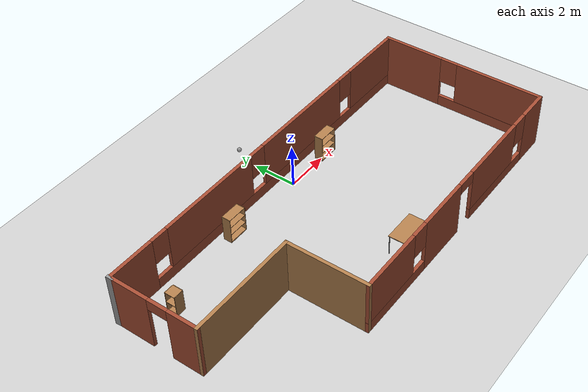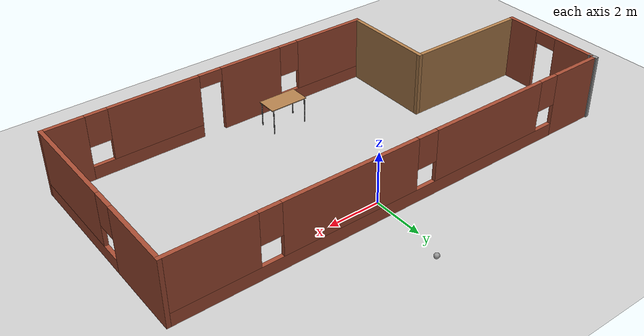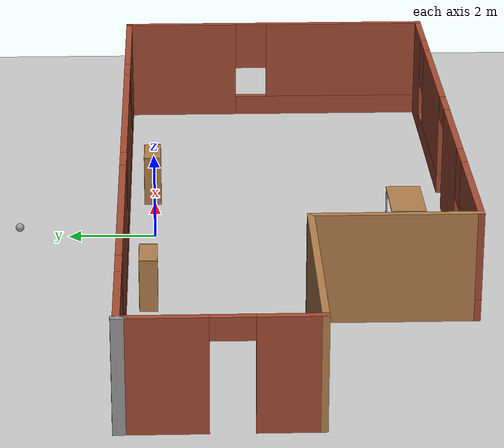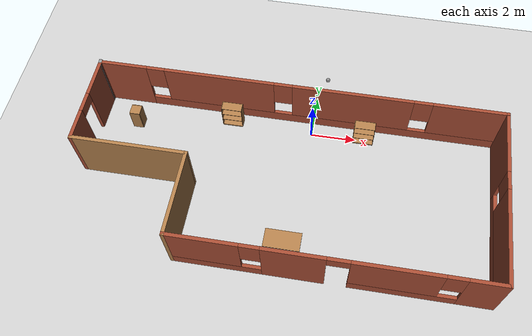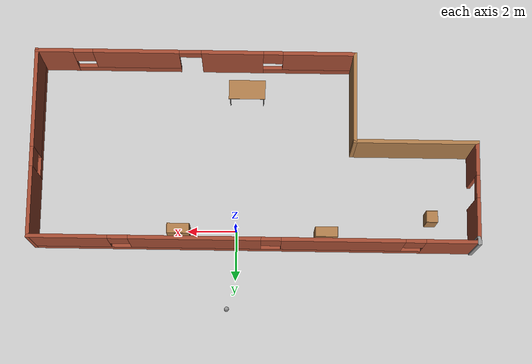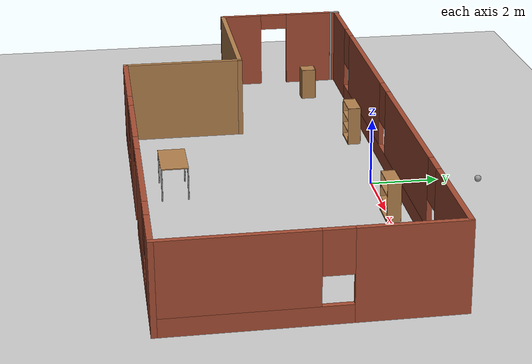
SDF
<sdf version="1.6">
 <world name="default">
  <plugin name="hello" filename="libhello.so"/>
  <light name="sun" type="directional">
   <pose>0 0 10 0 -0 0</pose>
   <diffuse>0.8 0.8 0.8 1</diffuse>
   <specular>0.2 0.2 0.2 1</specular>
   <attenuation>
    <range>1000</range>
    <constant>0.9</constant>
    <linear>0.01</linear>
    <quadratic>0.001</quadratic>
   </attenuation>
   <direction>-0.5 0.1 -0.9</direction>
  </light>
  <model name="ground_plane">
   <static>1</static>
   <link name="link">
    <collision name="collision">
     <geometry><plane><normal>0 0 1</normal><size>100 100</size></plane></geometry>
     <surface>
      <contact><collide_bitmask>65535</collide_bitmask></contact>
      <friction><ode><mu>100</mu><mu2>50</mu2></ode></friction>
     </surface>
    </collision>
    <visual name="visual">
     <cast_shadows>0</cast_shadows>
     <geometry><plane><normal>0 0 1</normal><size>100 100</size></plane></geometry>
     <material>
      <script><uri>file://media/materials/scripts/gazebo.material</uri><name>Gazebo/Grey</name></script>
     </material>
    </visual>
   </link>
  </model>
  <gravity>0 0 -9.8</gravity>
  <magnetic_field>6e-06 2.3e-05 -4.2e-05</magnetic_field>
  <atmosphere type="adiabatic"/>
  <physics name="default_physics" default="0" type="ode">
   <max_step_size>0.001</max_step_size>
   <real_time_factor>1</real_time_factor>
   <real_time_update_rate>1000</real_time_update_rate>
  </physics>
  <scene><ambient>0.4 0.4 0.4 1</ambient><background>0.7 0.7 0.7 1</background><shadows>1</shadows></scene>
  <spherical_coordinates>
   <surface_model>EARTH_WGS84</surface_model>
   <latitude_deg>0</latitude_deg>
   <longitude_deg>0</longitude_deg>
   <elevation>0</elevation>
   <heading_deg>0</heading_deg>
  </spherical_coordinates>
  <model name="building">
   <pose>-0.710805 -3.10027 0 0 -0 0</pose>
   <link name="Wall_0">
    <pose>0.057851 3.7776 0 0 -0 0</pose>
    <visual name="Wall_0_Visual_0">
     <pose>-7.84406 0 1.25 0 -0 0</pose>
     <geometry><box><size>2.06188 0.15 2.5</size></box></geometry>
     <material>
      <script><uri>file://media/materials/scripts/gazebo.material</uri><name>Gazebo/Bricks</name></script>
      <ambient>0.333333 0.666667 1 1</ambient>
     </material>
     <meta><layer>0</layer></meta>
    </visual>
    <collision name="Wall_0_Collision_0">
     <geometry><box><size>2.06188 0.15 2.5</size></box></geometry>
     <pose>-7.84406 0 1.25 0 -0 0</pose>
    </collision>
    <visual name="Wall_0_Visual_1">
     <pose>1.03094 0 0.25 0 -0 0</pose>
     <geometry><box><size>15.6881 0.15 0.5</size></box></geometry>
     <material>
      <script><uri>file://media/materials/scripts/gazebo.material</uri><name>Gazebo/Bricks</name></script>
      <ambient>0.333333 0.666667 1 1</ambient>
     </material>
     <meta><layer>0</layer></meta>
    </visual>
    <collision name="Wall_0_Collision_1">
     <geometry><box><size>15.6881 0.15 0.5</size></box></geometry>
     <pose>1.03094 0 0.25 0 -0 0</pose>
    </collision>
    <visual name="Wall_0_Visual_2">
     <pose>-3.58123 0 1.5 0 -0 0</pose>
     <geometry><box><size>4.86378 0.15 2</size></box></geometry>
     <material>
      <script><uri>file://media/materials/scripts/gazebo.material</uri><name>Gazebo/Bricks</name></script>
      <ambient>0.333333 0.666667 1 1</ambient>
     </material>
     <meta><layer>0</layer></meta>
    </visual>
    <collision name="Wall_0_Collision_2">
     <geometry><box><size>4.86378 0.15 2</size></box></geometry>
     <pose>-3.58123 0 1.5 0 -0 0</pose>
    </collision>
    <visual name="Wall_0_Visual_3">
     <pose>2.2646 0 1.5 0 -0 0</pose>
     <geometry><box><size>5.22788 0.15 2</size></box></geometry>
     <material>
      <script><uri>file://media/materials/scripts/gazebo.material</uri><name>Gazebo/Bricks</name></script>
      <ambient>0.333333 0.666667 1 1</ambient>
     </material>
     <meta><layer>0</layer></meta>
    </visual>
    <collision name="Wall_0_Collision_3">
     <geometry><box><size>5.22788 0.15 2</size></box></geometry>
     <pose>2.2646 0 1.5 0 -0 0</pose>
    </collision>
    <visual name="Wall_0_Visual_4">
     <pose>7.27677 0 1.5 0 -0 0</pose>
     <geometry><box><size>3.19646 0.15 2</size></box></geometry>
     <material>
      <script><uri>file://media/materials/scripts/gazebo.material</uri><name>Gazebo/Bricks</name></script>
      <ambient>0.333333 0.666667 1 1</ambient>
     </material>
     <meta><layer>0</layer></meta>
    </visual>
    <collision name="Wall_0_Collision_4">
     <geometry><box><size>3.19646 0.15 2</size></box></geometry>
     <pose>7.27677 0 1.5 0 -0 0</pose>
    </collision>
    <visual name="Wall_0_Visual_5">
     <pose>-6.41312 0 1.9 0 -0 0</pose>
     <geometry><box><size>0.8 0.15 1.2</size></box></geometry>
     <material>
      <script><uri>file://media/materials/scripts/gazebo.material</uri><name>Gazebo/Bricks</name></script>
      <ambient>0.333333 0.666667 1 1</ambient>
     </material>
     <meta><layer>0</layer></meta>
    </visual>
    <collision name="Wall_0_Collision_5">
     <geometry><box><size>0.8 0.15 1.2</size></box></geometry>
     <pose>-6.41312 0 1.9 0 -0 0</pose>
    </collision>
    <visual name="Wall_0_Visual_6">
     <pose>-0.749341 0 1.9 0 -0 0</pose>
     <geometry><box><size>0.8 0.15 1.2</size></box></geometry>
     <material>
      <script><uri>file://media/materials/scripts/gazebo.material</uri><name>Gazebo/Bricks</name></script>
      <ambient>0.333333 0.666667 1 1</ambient>
     </material>
     <meta><layer>0</layer></meta>
    </visual>
    <collision name="Wall_0_Collision_6">
     <geometry><box><size>0.8 0.15 1.2</size></box></geometry>
     <pose>-0.749341 0 1.9 0 -0 0</pose>
    </collision>
    <visual name="Wall_0_Visual_7">
     <pose>5.27854 0 1.9 0 -0 0</pose>
     <geometry><box><size>0.8 0.15 1.2</size></box></geometry>
     <material>
      <script><uri>file://media/materials/scripts/gazebo.material</uri><name>Gazebo/Bricks</name></script>
      <ambient>0.333333 0.666667 1 1</ambient>
     </material>
     <meta><layer>0</layer></meta>
    </visual>
    <collision name="Wall_0_Collision_7">
     <geometry><box><size>0.8 0.15 1.2</size></box></geometry>
     <pose>5.27854 0 1.9 0 -0 0</pose>
    </collision>
   </link>
   <link name="Wall_1">
    <pose>8.85785 -0.022395 0 0 0 -1.5708</pose>
    <visual name="Wall_1_Visual_0">
     <pose>-2.43951 0 1.25 0 -0 0</pose>
     <geometry><box><size>2.87099 0.15 2.5</size></box></geometry>
     <material>
      <script><uri>file://media/materials/scripts/gazebo.material</uri><name>Gazebo/Bricks</name></script>
      <ambient>1 1 1 1</ambient>
     </material>
     <meta><layer>0</layer></meta>
    </visual>
    <collision name="Wall_1_Collision_0">
     <geometry><box><size>2.87099 0.15 2.5</size></box></geometry>
     <pose>-2.43951 0 1.25 0 -0 0</pose>
    </collision>
    <visual name="Wall_1_Visual_1">
     <pose>1.43549 0 0.25 0 -0 0</pose>
     <geometry><box><size>4.87901 0.15 0.5</size></box></geometry>
     <material>
      <script><uri>file://media/materials/scripts/gazebo.material</uri><name>Gazebo/Bricks</name></script>
      <ambient>1 1 1 1</ambient>
     </material>
     <meta><layer>0</layer></meta>
    </visual>
    <collision name="Wall_1_Collision_1">
     <geometry><box><size>4.87901 0.15 0.5</size></box></geometry>
     <pose>1.43549 0 0.25 0 -0 0</pose>
    </collision>
    <visual name="Wall_1_Visual_2">
     <pose>1.8355 0 1.5 0 -0 0</pose>
     <geometry><box><size>4.07901 0.15 2</size></box></geometry>
     <material>
      <script><uri>file://media/materials/scripts/gazebo.material</uri><name>Gazebo/Bricks</name></script>
      <ambient>1 1 1 1</ambient>
     </material>
     <meta><layer>0</layer></meta>
    </visual>
    <collision name="Wall_1_Collision_2">
     <geometry><box><size>4.07901 0.15 2</size></box></geometry>
     <pose>1.8355 0 1.5 0 -0 0</pose>
    </collision>
    <visual name="Wall_1_Visual_3">
     <pose>-0.604009 0 1.9 0 -0 0</pose>
     <geometry><box><size>0.8 0.15 1.2</size></box></geometry>
     <material>
      <script><uri>file://media/materials/scripts/gazebo.material</uri><name>Gazebo/Bricks</name></script>
      <ambient>1 1 1 1</ambient>
     </material>
     <meta><layer>0</layer></meta>
    </visual>
    <collision name="Wall_1_Collision_3">
     <geometry><box><size>0.8 0.15 1.2</size></box></geometry>
     <pose>-0.604009 0 1.9 0 -0 0</pose>
    </collision>
   </link>
   <link name="Wall_10">
    <pose>-8.84215 1.7026 0 0 -0 1.5708</pose>
    <visual name="Wall_10_Visual_0">
     <pose>-1.30003 0 1.25 0 -0 0</pose>
     <geometry><box><size>1.39994 0.15 2.5</size></box></geometry>
     <material>
      <script><uri>file://media/materials/scripts/gazebo.material</uri><name>Gazebo/Bricks</name></script>
      <ambient>1 1 1 1</ambient>
     </material>
     <meta><layer>0</layer></meta>
    </visual>
    <collision name="Wall_10_Collision_0">
     <geometry><box><size>1.39994 0.15 2.5</size></box></geometry>
     <pose>-1.30003 0 1.25 0 -0 0</pose>
    </collision>
    <visual name="Wall_10_Visual_1">
     <pose>1.14997 0 1.25 0 -0 0</pose>
     <geometry><box><size>1.70006 0.15 2.5</size></box></geometry>
     <material>
      <script><uri>file://media/materials/scripts/gazebo.material</uri><name>Gazebo/Bricks</name></script>
      <ambient>1 1 1 1</ambient>
     </material>
     <meta><layer>0</layer></meta>
    </visual>
    <collision name="Wall_10_Collision_1">
     <geometry><box><size>1.70006 0.15 2.5</size></box></geometry>
     <pose>1.14997 0 1.25 0 -0 0</pose>
    </collision>
    <visual name="Wall_10_Visual_2">
     <pose>-0.150057 0 2.25 0 -0 0</pose>
     <geometry><box><size>0.9 0.15 0.5</size></box></geometry>
     <material>
      <script><uri>file://media/materials/scripts/gazebo.material</uri><name>Gazebo/Bricks</name></script>
      <ambient>1 1 1 1</ambient>
     </material>
     <meta><layer>0</layer></meta>
    </visual>
    <collision name="Wall_10_Collision_2">
     <geometry><box><size>0.9 0.15 0.5</size></box></geometry>
     <pose>-0.150057 0 2.25 0 -0 0</pose>
    </collision>
   </link>
   <link name="Wall_13">
    <collision name="Wall_13_Collision">
     <geometry><box><size>0.340794 0.15 2.5</size></box></geometry>
     <pose>0 0 1.25 0 -0 0</pose>
    </collision>
    <visual name="Wall_13_Visual">
     <pose>0 0 1.25 0 -0 0</pose>
     <geometry><box><size>0.340794 0.15 2.5</size></box></geometry>
     <material>
      <script><uri>file://media/materials/scripts/gazebo.material</uri><name>Gazebo/Grey</name></script>
      <ambient>1 1 1 1</ambient>
     </material>
     <meta><layer>0</layer></meta>
    </visual>
    <pose>-8.84783 3.72283 0 0 -0 1.63041</pose>
   </link>
   <link name="Wall_2">
    <pose>2.43285 -3.8224 0 0 -0 3.14159</pose>
    <visual name="Wall_2_Visual_0">
     <pose>-5.73111 0 1.25 0 -0 0</pose>
     <geometry><box><size>1.53778 0.15 2.5</size></box></geometry>
     <material>
      <script><uri>file://media/materials/scripts/gazebo.material</uri><name>Gazebo/Bricks</name></script>
      <ambient>1 1 1 1</ambient>
     </material>
     <meta><layer>0</layer></meta>
    </visual>
    <collision name="Wall_2_Collision_0">
     <geometry><box><size>1.53778 0.15 2.5</size></box></geometry>
     <pose>-5.73111 0 1.25 0 -0 0</pose>
    </collision>
    <visual name="Wall_2_Visual_1">
     <pose>1.47043 0 1.25 0 -0 0</pose>
     <geometry><box><size>2.50781 0.15 2.5</size></box></geometry>
     <material>
      <script><uri>file://media/materials/scripts/gazebo.material</uri><name>Gazebo/Bricks</name></script>
      <ambient>1 1 1 1</ambient>
     </material>
     <meta><layer>0</layer></meta>
    </visual>
    <collision name="Wall_2_Collision_1">
     <geometry><box><size>2.50781 0.15 2.5</size></box></geometry>
     <pose>1.47043 0 1.25 0 -0 0</pose>
    </collision>
    <visual name="Wall_2_Visual_2">
     <pose>-2.82285 0 0.25 0 -0 0</pose>
     <geometry><box><size>4.27875 0.15 0.5</size></box></geometry>
     <material>
      <script><uri>file://media/materials/scripts/gazebo.material</uri><name>Gazebo/Bricks</name></script>
      <ambient>1 1 1 1</ambient>
     </material>
     <meta><layer>0</layer></meta>
    </visual>
    <collision name="Wall_2_Collision_2">
     <geometry><box><size>4.27875 0.15 0.5</size></box></geometry>
     <pose>-2.82285 0 0.25 0 -0 0</pose>
    </collision>
    <visual name="Wall_2_Visual_3">
     <pose>4.61217 0 0.25 0 -0 0</pose>
     <geometry><box><size>3.77566 0.15 0.5</size></box></geometry>
     <material>
      <script><uri>file://media/materials/scripts/gazebo.material</uri><name>Gazebo/Bricks</name></script>
      <ambient>1 1 1 1</ambient>
     </material>
     <meta><layer>0</layer></meta>
    </visual>
    <collision name="Wall_2_Collision_3">
     <geometry><box><size>3.77566 0.15 0.5</size></box></geometry>
     <pose>4.61217 0 0.25 0 -0 0</pose>
    </collision>
    <visual name="Wall_2_Visual_4">
     <pose>-2.42285 0 1.5 0 -0 0</pose>
     <geometry><box><size>3.47875 0.15 2</size></box></geometry>
     <material>
      <script><uri>file://media/materials/scripts/gazebo.material</uri><name>Gazebo/Bricks</name></script>
      <ambient>1 1 1 1</ambient>
     </material>
     <meta><layer>0</layer></meta>
    </visual>
    <collision name="Wall_2_Collision_4">
     <geometry><box><size>3.47875 0.15 2</size></box></geometry>
     <pose>-2.42285 0 1.5 0 -0 0</pose>
    </collision>
    <visual name="Wall_2_Visual_5">
     <pose>-2.42285 0 1.5 0 -0 0</pose>
     <geometry><box><size>3.47875 0.15 2</size></box></geometry>
     <material>
      <script><uri>file://media/materials/scripts/gazebo.material</uri><name>Gazebo/Bricks</name></script>
      <ambient>1 1 1 1</ambient>
     </material>
     <meta><layer>0</layer></meta>
    </visual>
    <collision name="Wall_2_Collision_5">
     <geometry><box><size>3.47875 0.15 2</size></box></geometry>
     <pose>-2.42285 0 1.5 0 -0 0</pose>
    </collision>
    <visual name="Wall_2_Visual_6">
     <pose>5.01217 0 1.5 0 -0 0</pose>
     <geometry><box><size>2.97566 0.15 2</size></box></geometry>
     <material>
      <script><uri>file://media/materials/scripts/gazebo.material</uri><name>Gazebo/Bricks</name></script>
      <ambient>1 1 1 1</ambient>
     </material>
     <meta><layer>0</layer></meta>
    </visual>
    <collision name="Wall_2_Collision_6">
     <geometry><box><size>2.97566 0.15 2</size></box></geometry>
     <pose>5.01217 0 1.5 0 -0 0</pose>
    </collision>
    <visual name="Wall_2_Visual_7">
     <pose>-4.56222 0 1.9 0 -0 0</pose>
     <geometry><box><size>0.8 0.15 1.2</size></box></geometry>
     <material>
      <script><uri>file://media/materials/scripts/gazebo.material</uri><name>Gazebo/Bricks</name></script>
      <ambient>1 1 1 1</ambient>
     </material>
     <meta><layer>0</layer></meta>
    </visual>
    <collision name="Wall_2_Collision_7">
     <geometry><box><size>0.8 0.15 1.2</size></box></geometry>
     <pose>-4.56222 0 1.9 0 -0 0</pose>
    </collision>
    <visual name="Wall_2_Visual_8">
     <pose>3.12434 0 1.9 0 -0 0</pose>
     <geometry><box><size>0.8 0.15 1.2</size></box></geometry>
     <material>
      <script><uri>file://media/materials/scripts/gazebo.material</uri><name>Gazebo/Bricks</name></script>
      <ambient>1 1 1 1</ambient>
     </material>
     <meta><layer>0</layer></meta>
    </visual>
    <collision name="Wall_2_Collision_8">
     <geometry><box><size>0.8 0.15 1.2</size></box></geometry>
     <pose>3.12434 0 1.9 0 -0 0</pose>
    </collision>
    <visual name="Wall_2_Visual_9">
     <pose>-0.233473 0 2.25 0 -0 0</pose>
     <geometry><box><size>0.9 0.15 0.5</size></box></geometry>
     <material>
      <script><uri>file://media/materials/scripts/gazebo.material</uri><name>Gazebo/Bricks</name></script>
      <ambient>1 1 1 1</ambient>
     </material>
     <meta><layer>0</layer></meta>
    </visual>
    <collision name="Wall_2_Collision_9">
     <geometry><box><size>0.9 0.15 0.5</size></box></geometry>
     <pose>-0.233473 0 2.25 0 -0 0</pose>
    </collision>
    <visual name="Wall_2_Visual_10">
     <pose>-0.233473 0 2.25 0 -0 0</pose>
     <geometry><box><size>0.9 0.15 0.5</size></box></geometry>
     <material>
      <script><uri>file://media/materials/scripts/gazebo.material</uri><name>Gazebo/Bricks</name></script>
      <ambient>1 1 1 1</ambient>
     </material>
     <meta><layer>0</layer></meta>
    </visual>
    <collision name="Wall_2_Collision_10">
     <geometry><box><size>0.9 0.15 0.5</size></box></geometry>
     <pose>-0.233473 0 2.25 0 -0 0</pose>
    </collision>
   </link>
   <link name="Wall_3">
    <collision name="Wall_3_Collision">
     <geometry><box><size>3.75 0.15 2.5</size></box></geometry>
     <pose>0 0 1.25 0 -0 0</pose>
    </collision>
    <visual name="Wall_3_Visual">
     <pose>0 0 1.25 0 -0 0</pose>
     <geometry><box><size>3.75 0.15 2.5</size></box></geometry>
     <material>
      <script><uri>file://media/materials/scripts/gazebo.material</uri><name>Gazebo/Wood</name></script>
      <ambient>1 1 1 1</ambient>
     </material>
     <meta><layer>0</layer></meta>
    </visual>
    <pose>-3.99215 -2.02239 0 0 -0 1.5708</pose>
   </link>
   <link name="Wall_4">
    <collision name="Wall_4_Collision">
     <geometry><box><size>5 0.15 2.5</size></box></geometry>
     <pose>0 0 1.25 0 -0 0</pose>
    </collision>
    <visual name="Wall_4_Visual">
     <pose>0 0 1.25 0 -0 0</pose>
     <geometry><box><size>5 0.15 2.5</size></box></geometry>
     <material>
      <script><uri>file://media/materials/scripts/gazebo.material</uri><name>Gazebo/Wood</name></script>
      <ambient>1 1 1 1</ambient>
     </material>
     <meta><layer>0</layer></meta>
    </visual>
    <pose>-6.41715 -0.222395 0 0 -0 3.14159</pose>
   </link>
   <static>1</static>
  </model>
  <model name="bookshelf">
   <static>1</static>
   <link name="link">
    <inertial><mass>1</mass></inertial>
    <collision name="back">
     <pose>0 0.005 0.6 0 -0 0</pose>
     <geometry><box><size>0.9 0.01 1.2</size></box></geometry>
    </collision>
    <visual name="visual1">
     <pose>0 0.005 0.6 0 -0 0</pose>
     <geometry><box><size>0.9 0.01 1.2</size></box></geometry>
     <material>
      <script><uri>file://media/materials/scripts/gazebo.material</uri><name>Gazebo/Wood</name></script>
     </material>
    </visual>
    <collision name="left_side">
     <pose>0.45 -0.195 0.6 0 -0 0</pose>
     <geometry><box><size>0.02 0.4 1.2</size></box></geometry>
    </collision>
    <visual name="visual2">
     <pose>0.45 -0.195 0.6 0 -0 0</pose>
     <geometry><box><size>0.02 0.4 1.2</size></box></geometry>
     <material>
      <script><uri>file://media/materials/scripts/gazebo.material</uri><name>Gazebo/Wood</name></script>
     </material>
    </visual>
    <collision name="right_side">
     <pose>-0.45 -0.195 0.6 0 -0 0</pose>
     <geometry><box><size>0.02 0.4 1.2</size></box></geometry>
    </collision>
    <visual name="visual3">
     <pose>-0.45 -0.195 0.6 0 -0 0</pose>
     <geometry><box><size>0.02 0.4 1.2</size></box></geometry>
     <material>
      <script><uri>file://media/materials/scripts/gazebo.material</uri><name>Gazebo/Wood</name></script>
     </material>
    </visual>
    <collision name="bottom">
     <pose>0 -0.195 0.03 0 -0 0</pose>
     <geometry><box><size>0.88 0.4 0.06</size></box></geometry>
    </collision>
    <visual name="visual4">
     <pose>0 -0.195 0.03 0 -0 0</pose>
     <geometry><box><size>0.88 0.4 0.06</size></box></geometry>
     <material>
      <script><uri>file://media/materials/scripts/gazebo.material</uri><name>Gazebo/Wood</name></script>
     </material>
    </visual>
    <collision name="top">
     <pose>0 -0.195 1.19 0 -0 0</pose>
     <geometry><box><size>0.88 0.4 0.02</size></box></geometry>
    </collision>
    <visual name="visual5">
     <pose>0 -0.195 1.19 0 -0 0</pose>
     <geometry><box><size>0.88 0.4 0.02</size></box></geometry>
     <material>
      <script><uri>file://media/materials/scripts/gazebo.material</uri><name>Gazebo/Wood</name></script>
     </material>
    </visual>
    <collision name="low_shelf">
     <pose>0 -0.195 0.43 0 -0 0</pose>
     <geometry><box><size>0.88 0.4 0.02</size></box></geometry>
    </collision>
    <visual name="visual6">
     <pose>0 -0.195 0.43 0 -0 0</pose>
     <geometry><box><size>0.88 0.4 0.02</size></box></geometry>
     <material>
      <script><uri>file://media/materials/scripts/gazebo.material</uri><name>Gazebo/Wood</name></script>
     </material>
    </visual>
    <collision name="high_shelf">
     <pose>0 -0.195 0.8 0 -0 0</pose>
     <geometry><box><size>0.88 0.4 0.02</size></box></geometry>
    </collision>
    <visual name="visual7">
     <pose>0 -0.195 0.8 0 -0 0</pose>
     <geometry><box><size>0.88 0.4 0.02</size></box></geometry>
     <material>
      <script><uri>file://media/materials/scripts/gazebo.material</uri><name>Gazebo/Wood</name></script>
     </material>
    </visual>
   </link>
   <pose>-3.63829 0.316011 0 0 -0 0</pose>
  </model>
  <model name="bookshelf_0">
   <static>1</static>
   <link name="link">
    <inertial><mass>1</mass></inertial>
    <collision name="back">
     <pose>0 0.005 0.6 0 -0 0</pose>
     <geometry><box><size>0.9 0.01 1.2</size></box></geometry>
    </collision>
    <visual name="visual1">
     <pose>0 0.005 0.6 0 -0 0</pose>
     <geometry><box><size>0.9 0.01 1.2</size></box></geometry>
     <material>
      <script><uri>file://media/materials/scripts/gazebo.material</uri><name>Gazebo/Wood</name></script>
     </material>
    </visual>
    <collision name="left_side">
     <pose>0.45 -0.195 0.6 0 -0 0</pose>
     <geometry><box><size>0.02 0.4 1.2</size></box></geometry>
    </collision>
    <visual name="visual2">
     <pose>0.45 -0.195 0.6 0 -0 0</pose>
     <geometry><box><size>0.02 0.4 1.2</size></box></geometry>
     <material>
      <script><uri>file://media/materials/scripts/gazebo.material</uri><name>Gazebo/Wood</name></script>
     </material>
    </visual>
    <collision name="right_side">
     <pose>-0.45 -0.195 0.6 0 -0 0</pose>
     <geometry><box><size>0.02 0.4 1.2</size></box></geometry>
    </collision>
    <visual name="visual3">
     <pose>-0.45 -0.195 0.6 0 -0 0</pose>
     <geometry><box><size>0.02 0.4 1.2</size></box></geometry>
     <material>
      <script><uri>file://media/materials/scripts/gazebo.material</uri><name>Gazebo/Wood</name></script>
     </material>
    </visual>
    <collision name="bottom">
     <pose>0 -0.195 0.03 0 -0 0</pose>
     <geometry><box><size>0.88 0.4 0.06</size></box></geometry>
    </collision>
    <visual name="visual4">
     <pose>0 -0.195 0.03 0 -0 0</pose>
     <geometry><box><size>0.88 0.4 0.06</size></box></geometry>
     <material>
      <script><uri>file://media/materials/scripts/gazebo.material</uri><name>Gazebo/Wood</name></script>
     </material>
    </visual>
    <collision name="top">
     <pose>0 -0.195 1.19 0 -0 0</pose>
     <geometry><box><size>0.88 0.4 0.02</size></box></geometry>
    </collision>
    <visual name="visual5">
     <pose>0 -0.195 1.19 0 -0 0</pose>
     <geometry><box><size>0.88 0.4 0.02</size></box></geometry>
     <material>
      <script><uri>file://media/materials/scripts/gazebo.material</uri><name>Gazebo/Wood</name></script>
     </material>
    </visual>
    <collision name="low_shelf">
     <pose>0 -0.195 0.43 0 -0 0</pose>
     <geometry><box><size>0.88 0.4 0.02</size></box></geometry>
    </collision>
    <visual name="visual6">
     <pose>0 -0.195 0.43 0 -0 0</pose>
     <geometry><box><size>0.88 0.4 0.02</size></box></geometry>
     <material>
      <script><uri>file://media/materials/scripts/gazebo.material</uri><name>Gazebo/Wood</name></script>
     </material>
    </visual>
    <collision name="high_shelf">
     <pose>0 -0.195 0.8 0 -0 0</pose>
     <geometry><box><size>0.88 0.4 0.02</size></box></geometry>
    </collision>
    <visual name="visual7">
     <pose>0 -0.195 0.8 0 -0 0</pose>
     <geometry><box><size>0.88 0.4 0.02</size></box></geometry>
     <material>
      <script><uri>file://media/materials/scripts/gazebo.material</uri><name>Gazebo/Wood</name></script>
     </material>
    </visual>
   </link>
   <pose>2.33827 0.254521 0 0 -0 0</pose>
  </model>
  <model name="cabinet">
   <static>1</static>
   <link name="cabinet_bottom_plate">
    <inertial>
     <pose>0 0 -1 0 -0 0</pose>
     <inertia><ixx>2.05</ixx><ixy>0</ixy><ixz>0</ixz><iyy>2.05</iyy><iyz>0</iyz><izz>2.05</izz></inertia>
     <mass>25</mass>
    </inertial>
    <collision name="cabinet_bottom_plate_geom">
     <pose>0 0 0.01 0 -0 0</pose>
     <geometry><box><size>0.45 0.45 0.02</size></box></geometry>
    </collision>
    <visual name="cabinet_bottom_plate_geom_visual">
     <pose>0 0 0.01 0 -0 0</pose>
     <geometry><box><size>0.45 0.45 0.02</size></box></geometry>
     <material>
      <script><uri>file://media/materials/scripts/gazebo.material</uri><name>Gazebo/Wood</name></script>
     </material>
    </visual>
    <collision name="cabinet_bottom_plate_geom_cabinet_back_plate">
     <pose>0.235 0 0.51 0 -0 0</pose>
     <geometry><box><size>0.02 0.45 1.02</size></box></geometry>
    </collision>
    <visual name="cabinet_bottom_plate_geom_cabinet_back_plate_visual">
     <pose>0.235 0 0.51 0 -0 0</pose>
     <geometry><box><size>0.02 0.45 1.02</size></box></geometry>
     <material>
      <script><uri>file://media/materials/scripts/gazebo.material</uri><name>Gazebo/Wood</name></script>
     </material>
    </visual>
    <collision name="cabinet_bottom_plate_geom_cabinet_left_plate">
     <pose>0 0.235 0.51 0 -0 0</pose>
     <geometry><box><size>0.45 0.02 1.02</size></box></geometry>
    </collision>
    <visual name="cabinet_bottom_plate_geom_cabinet_left_plate_visual">
     <pose>0 0.235 0.51 0 -0 0</pose>
     <geometry><box><size>0.45 0.02 1.02</size></box></geometry>
     <material>
      <script><uri>file://media/materials/scripts/gazebo.material</uri><name>Gazebo/Wood</name></script>
     </material>
    </visual>
    <collision name="cabinet_bottom_plate_geom_cabinet_middle_plate">
     <pose>0 0 0.51 0 -0 0</pose>
     <geometry><box><size>0.45 0.45 0.02</size></box></geometry>
    </collision>
    <visual name="cabinet_bottom_plate_geom_cabinet_middle_plate_visual">
     <pose>0 0 0.51 0 -0 0</pose>
     <geometry><box><size>0.45 0.45 0.02</size></box></geometry>
     <material>
      <script><uri>file://media/materials/scripts/gazebo.material</uri><name>Gazebo/Wood</name></script>
     </material>
    </visual>
    <collision name="cabinet_bottom_plate_geom_cabinet_right_plate">
     <pose>0 -0.235 0.51 0 -0 0</pose>
     <geometry><box><size>0.45 0.02 1.02</size></box></geometry>
    </collision>
    <visual name="cabinet_bottom_plate_geom_cabinet_right_plate_visual">
     <pose>0 -0.235 0.51 0 -0 0</pose>
     <geometry><box><size>0.45 0.02 1.02</size></box></geometry>
     <material>
      <script><uri>file://media/materials/scripts/gazebo.material</uri><name>Gazebo/Wood</name></script>
     </material>
    </visual>
    <collision name="cabinet_bottom_plate_geom_cabinet_top_plate">
     <pose>0 0 1.01 0 -0 0</pose>
     <geometry><box><size>0.45 0.45 0.02</size></box></geometry>
    </collision>
    <visual name="cabinet_bottom_plate_geom_cabinet_top_plate_visual">
     <pose>0 0 1.01 0 -0 0</pose>
     <geometry><box><size>0.45 0.45 0.02</size></box></geometry>
     <material>
      <script><uri>file://media/materials/scripts/gazebo.material</uri><name>Gazebo/Wood</name></script>
     </material>
    </visual>
   </link>
   <pose>-7.91223 -0.596802 0 0 -0 0</pose>
  </model>
  <model name="table">
   <static>1</static>
   <link name="link">
    <collision name="surface">
     <pose>0 0 1 0 -0 0</pose>
     <geometry><box><size>1.5 0.8 0.03</size></box></geometry>
     <surface><friction><ode><mu>0.6</mu><mu2>0.6</mu2></ode></friction></surface>
    </collision>
    <visual name="visual1">
     <pose>0 0 1 0 -0 0</pose>
     <geometry><box><size>1.5 0.8 0.03</size></box></geometry>
     <material>
      <script><uri>file://media/materials/scripts/gazebo.material</uri><name>Gazebo/Wood</name></script>
     </material>
    </visual>
    <collision name="front_left_leg">
     <pose>0.68 0.38 0.5 0 -0 0</pose>
     <geometry><cylinder><radius>0.02</radius><length>1</length></cylinder></geometry>
    </collision>
    <visual name="front_left_leg">
     <pose>0.68 0.38 0.5 0 -0 0</pose>
     <geometry><cylinder><radius>0.02</radius><length>1</length></cylinder></geometry>
     <material>
      <script><uri>file://media/materials/scripts/gazebo.material</uri><name>Gazebo/Grey</name></script>
     </material>
    </visual>
    <collision name="front_right_leg">
     <pose>0.68 -0.38 0.5 0 -0 0</pose>
     <geometry><cylinder><radius>0.02</radius><length>1</length></cylinder></geometry>
    </collision>
    <visual name="front_right_leg">
     <pose>0.68 -0.38 0.5 0 -0 0</pose>
     <geometry><cylinder><radius>0.02</radius><length>1</length></cylinder></geometry>
     <material>
      <script><uri>file://media/materials/scripts/gazebo.material</uri><name>Gazebo/Grey</name></script>
     </material>
    </visual>
    <collision name="back_right_leg">
     <pose>-0.68 -0.38 0.5 0 -0 0</pose>
     <geometry><cylinder><radius>0.02</radius><length>1</length></cylinder></geometry>
    </collision>
    <visual name="back_right_leg">
     <pose>-0.68 -0.38 0.5 0 -0 0</pose>
     <geometry><cylinder><radius>0.02</radius><length>1</length></cylinder></geometry>
     <material>
      <script><uri>file://media/materials/scripts/gazebo.material</uri><name>Gazebo/Grey</name></script>
     </material>
    </visual>
    <collision name="back_left_leg">
     <pose>-0.68 0.38 0.5 0 -0 0</pose>
     <geometry><cylinder><radius>0.02</radius><length>1</length></cylinder></geometry>
    </collision>
    <visual name="back_left_leg">
     <pose>-0.68 0.38 0.5 0 -0 0</pose>
     <geometry><cylinder><radius>0.02</radius><length>1</length></cylinder></geometry>
     <material>
      <script><uri>file://media/materials/scripts/gazebo.material</uri><name>Gazebo/Grey</name></script>
     </material>
    </visual>
   </link>
   <pose>-0.355201 -5.80955 0 0 -0 0</pose>
  </model>
  <model name="my_ball">
   <link name="link_0">
    <inertial>
     <mass>1</mass>
     <inertia><ixx>0.1</ixx><ixy>0</ixy><ixz>0</ixz><iyy>0.1</iyy><iyz>0</iyz><izz>0.1</izz></inertia>
    </inertial>
    <visual name="visual">
     <geometry><sphere><radius>0.1</radius></sphere></geometry>
     <material>
      <lighting>1</lighting>
      <script><uri>file://media/materials/scripts/gazebo.material</uri><name>Gazebo/Grey</name></script>
      <shader type="pixel"><normal_map>__default__</normal_map></shader>
      <ambient>1 1 1 1</ambient>
      <diffuse>1 1 1 1</diffuse>
      <specular>1 1 1 1</specular>
      <emissive>1 1 1 1</emissive>
     </material>
    </visual>
    <collision name="collision">
     <geometry><sphere><radius>0.1</radius></sphere></geometry>
     <surface>
      <friction>
       <ode><mu>1</mu><mu2>1</mu2><fdir1>0 0 0</fdir1><slip1>0</slip1><slip2>0</slip2></ode>
       <torsional>
        <coefficient>1</coefficient>
        <patch_radius>0</patch_radius>
        <surface_radius>0</surface_radius>
        <use_patch_radius>1</use_patch_radius>
        <ode><slip>0</slip></ode>
       </torsional>
      </friction>
      <bounce><restitution_coefficient>0</restitution_coefficient><threshold>1e+06</threshold></bounce>
      <contact>
       <collide_without_contact>0</collide_without_contact>
       <collide_without_contact_bitmask>1</collide_without_contact_bitmask>
       <collide_bitmask>1</collide_bitmask>
       <ode>
        <soft_cfm>0</soft_cfm>
        <soft_erp>0.2</soft_erp>
        <kp>1e+13</kp>
        <kd>1</kd>
        <max_vel>0.01</max_vel>
        <min_depth>0</min_depth>
       </ode>
       <bullet>
        <split_impulse>1</split_impulse>
        <split_impulse_penetration_threshold>-0.01</split_impulse_penetration_threshold>
        <soft_cfm>0</soft_cfm>
        <soft_erp>0.2</soft_erp>
        <kp>1e+13</kp>
        <kd>1</kd>
       </bullet>
      </contact>
     </surface>
    </collision>
   </link>
   <static>0</static>
   <pose>0.343699 3.17112 0.1 0 -0 0</pose>
  </model>
 </world>
</sdf>
